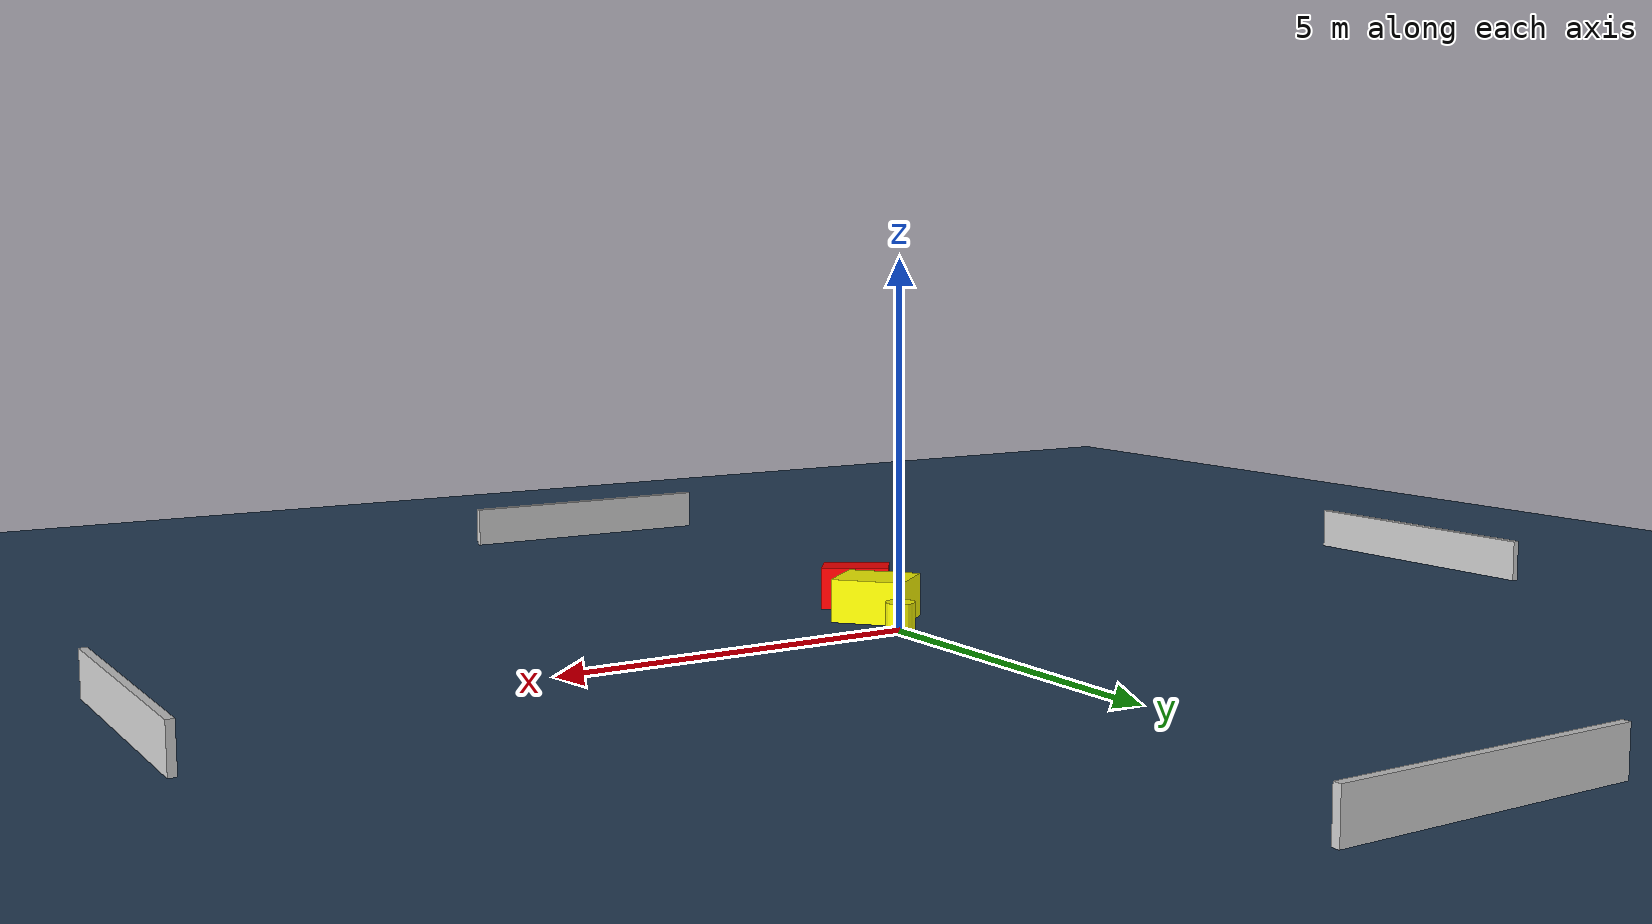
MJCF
<?xml version="1.0" ?>
<mujoco model="generated_environment">
  <option timestep="0.01" integrator="RK4" cone="elliptic"/>
  <default>
    <geom density="1"/>
  </default>
  <asset>
    <texture builtin="gradient" height="3072" name="skybox" rgb1="0.3 0.5 0.7" rgb2="0 0 0" type="skybox" width="512"/>
    <texture builtin="checker" height="300" name="groundplane" rgb1="0.2 0.3 0.4" rgb2="0.1 0.2 0.3" type="2d" width="300"/>
    <material name="groundplane" reflectance="0.2" texrepeat="5 5" texture="groundplane"/>
  </asset>
  <worldbody>
    <light dir="0 0 -1" directional="true" pos="0 0 1.5"/>
    <geom condim="3" friction="0.5 0.005 0.001" material="groundplane" name="floor" pos="0 0 0" size="0 0 0.05" type="plane"/>
    <body name="walls">
      <geom name="wall_1" condim="4" pos="-10.0 0.0 0.3" rgba="0.800000011920929 0.800000011920929 0.800000011920929 1.0" size="0.05 2.0 0.3" type="box"/>
      <geom name="wall_2" condim="4" pos="10.0 0.0 0.3" rgba="0.800000011920929 0.800000011920929 0.800000011920929 1.0" size="0.05 2.0 0.3" type="box"/>
      <geom name="wall_3" condim="4" pos="0.0 -10.0 0.3" rgba="0.800000011920929 0.800000011920929 0.800000011920929 1.0" size="2.0 0.05 0.3" type="box"/>
      <geom name="wall_4" condim="4" pos="0.0 10.0 0.3" rgba="0.800000011920929 0.800000011920929 0.800000011920929 1.0" size="2.0 0.05 0.3" type="box"/>
    </body>
    <body name="robot">
      <joint name="joint_x" type="slide" pos="0 0 0" axis="1 0 0"/>
      <joint name="joint_y" type="slide" pos="0 0 0" axis="0 1 0"/>
      <geom name="robot" type="cylinder" pos="0.0 0.0 0.2" size="0.2 0.2 0.0" mass="5.0" friction="1.0 0.005 0.0001" condim="4" rgba="1.0 1.0 0.0 1.0"/>
    </body>
    <body name="obstacle_1_movable">
      <geom name="obstacle_1_movable" condim="4" pos="-0.1770656075330527 -0.8810594147701273 0.3" euler="0 0 309.695212231229" friction="0.0 0.005 0.001" rgba="1.0 1.0 0.0 1.0" size="0.5173841292709924 0.4099075025735096 0.3" type="box" mass="0.1"/>
      <joint type="free"/>
    </body>
    <body name="obstacle_2_static">
      <geom name="obstacle_2_static" condim="4" pos="-0.4217108684028791 -1.792959066254437 0.3" euler="0 0 323.8528231541747" friction="0.0 0.005 0.001" rgba="1.0 0.0 0.0 1.0" size="0.4731279245504464 0.2561271827290338 0.3" type="box"/>
    </body>
  </worldbody>
  <actuator>
    <motor name="actuator_x" joint="joint_x" gear="1" ctrlrange="-1 1"/>
    <motor name="actuator_y" joint="joint_y" gear="1" ctrlrange="-1 1"/>
  </actuator>
</mujoco>
